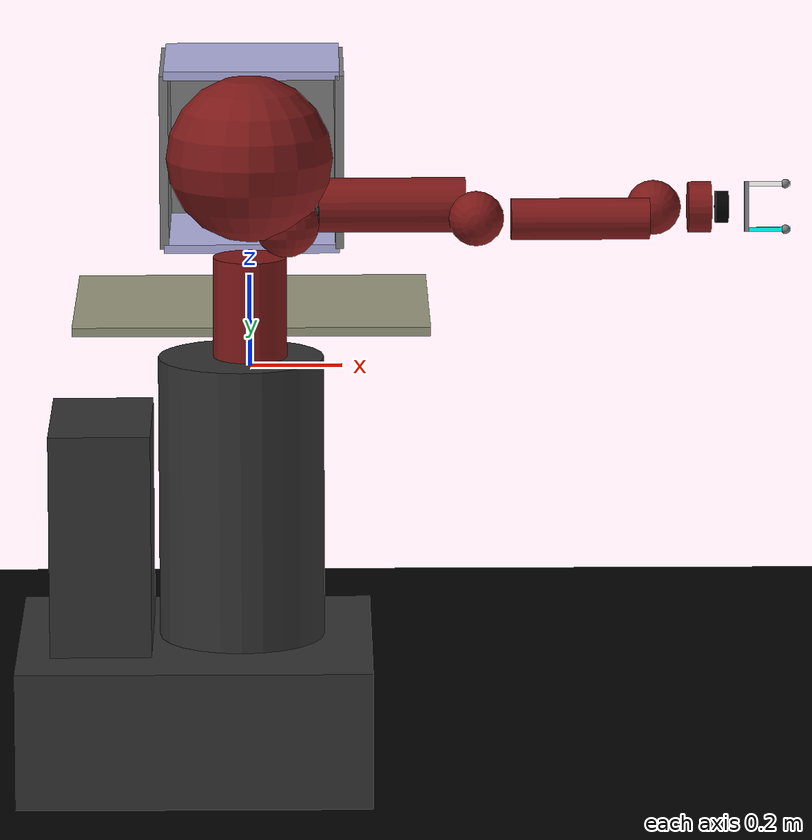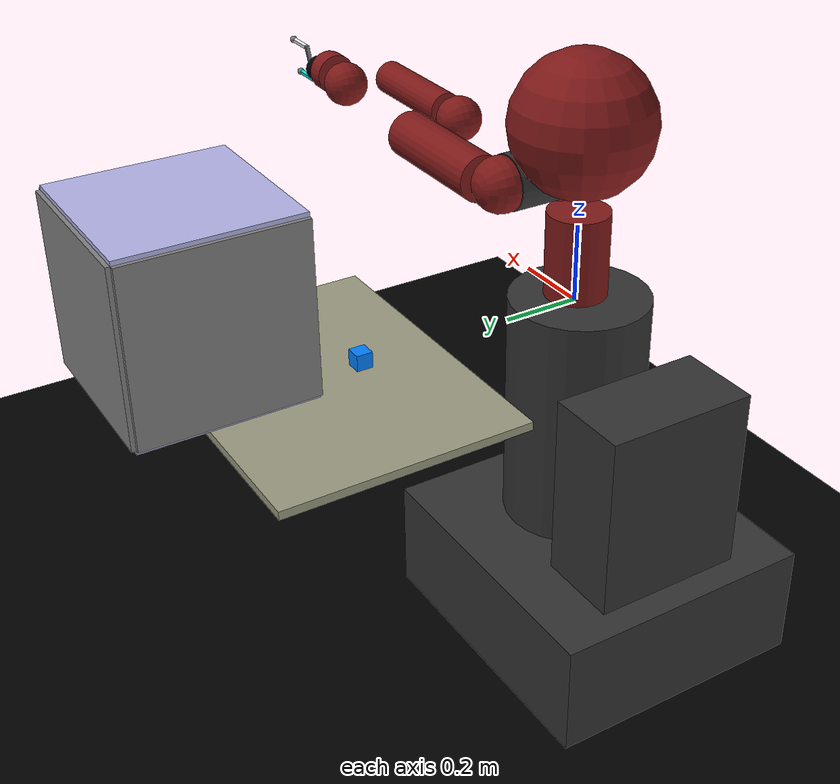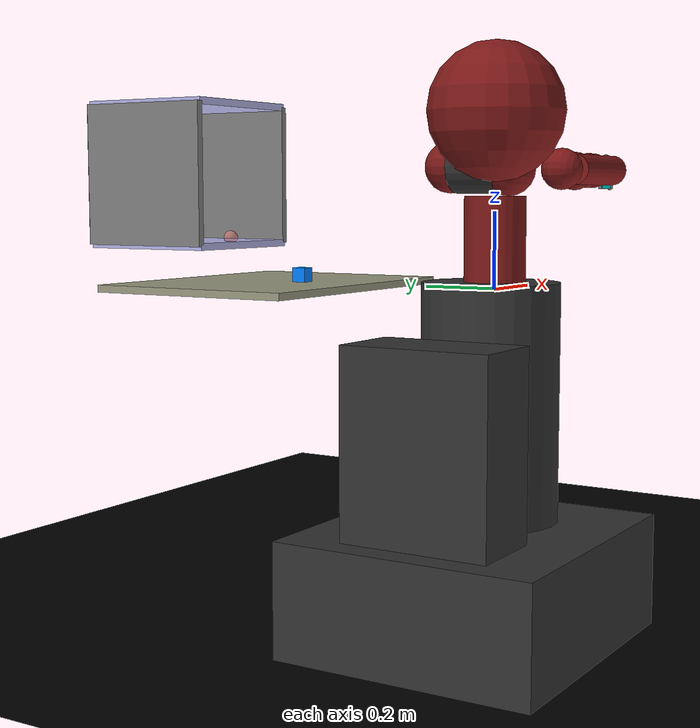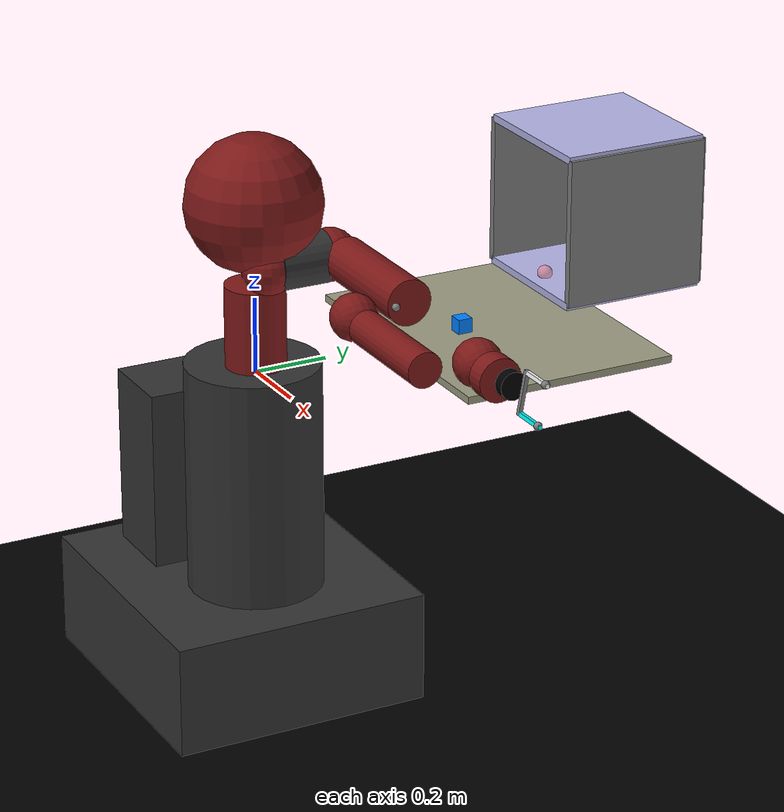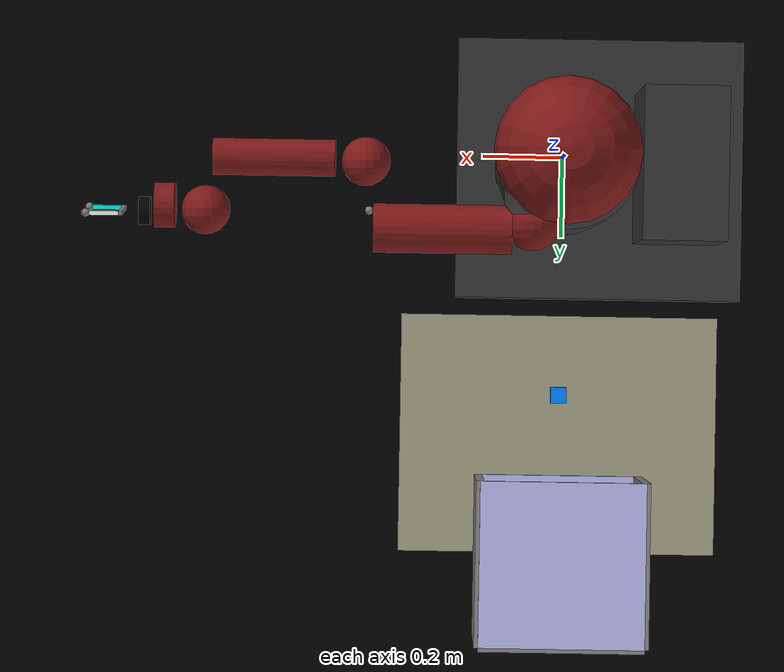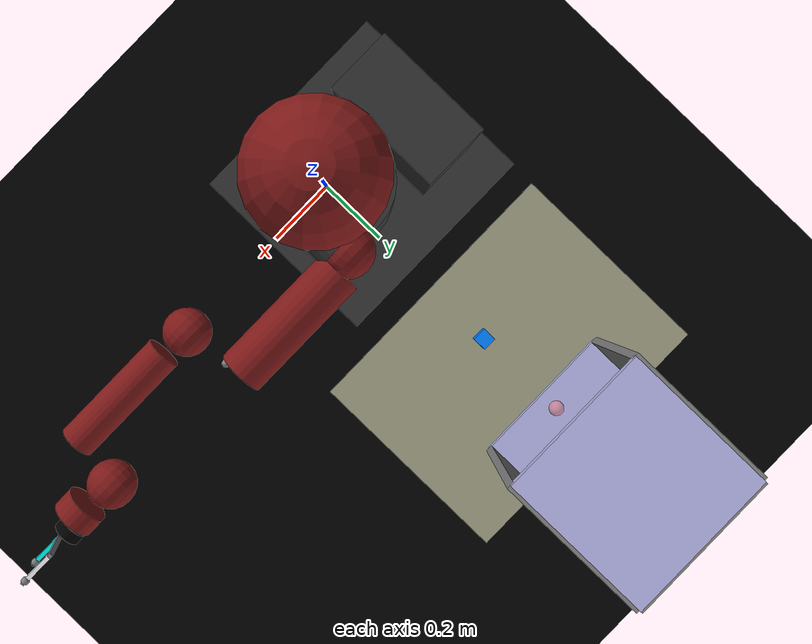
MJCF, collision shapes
<?xml version="1.0" encoding="utf-8"?>
<mujoco>
    <include file="shared_config.xml"></include>
    <worldbody>
        <include file="sawyer_xyz_base.xml"></include>

        <body name="obj" pos="0. 0.6 0.02">
            <joint name="objjoint" type="free" limited='false' damping="0" armature="0" />
            <inertial pos="0 0 0" mass=".1" diaginertia="100000 100000 100000"/>
            <geom name="objbox" type="box" pos="0 0 0"
                  size="0.02 0.02 0.02" rgba="0 0.5 1 1"
                  contype="7" conaffinity="7" friction="10.0 0.10 0.002" condim="4" mass="1"
            />
            <site name="obj" pos="0 0 0" size="0.01" />
        </body>

        <body name="cabinet" pos="0 1 0.1" euler='0 0 -1.57'>
            <geom type="box" pos="0 0 0" size="0.2 0.2 0.01" rgba=".7 .7 .9 1" contype="1" conaffinity="1"/>

            <geom type="box" pos="-0.2 0 0.2" size="0.01 0.2 0.2" contype="1" conaffinity="1"/>
            <geom type="box" pos="0 0.2 0.2" size="0.2 0.01 0.2"  contype="1" conaffinity="1"/>
            <geom type="box" pos="0 -0.2 0.2" size="0.2 0.01 0.2" contype="1" conaffinity="1"/>
            <geom type="box" pos="0 0 0.4" size="0.2 0.2 0.01" rgba=".7 .7 .9 1" contype="1" conaffinity="1"/>

        </body>

        <site name="goal" pos="0 0.85 0.12" size="0.02"
              rgba="1 0.5 0.5 0.5"/>

    </worldbody>
    <actuator>
        <position ctrllimited="true" ctrlrange="-1 1" joint="r_close" kp="100"  user="1"/>
        <position ctrllimited="true" ctrlrange="-1 1" joint="l_close" kp="100"  user="1"/>

    </actuator>
</mujoco>

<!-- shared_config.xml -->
<mujoco>
    <asset>
        <mesh name="pedestal" file="sawyer/pedestal.stl" />
        <mesh name="base" file="sawyer/base.stl" />
        <mesh name="l0" file="sawyer/l0.stl" />
        <mesh name="head" file="sawyer/head.stl" />
        <mesh name="l1" file="sawyer/l1.stl" />
        <mesh name="l2" file="sawyer/l2.stl" />
        <mesh name="l3" file="sawyer/l3.stl" />
        <mesh name="l4" file="sawyer/l4.stl" />
        <mesh name="l5" file="sawyer/l5.stl" />
        <mesh name="l6" file="sawyer/l6.stl" />

        <mesh name="WSG50_110" file="sawyer/WSG50_110.stl" />
    </asset>

    <visual>
        <headlight ambient="0.5 0.5 0.5"  />
    </visual>

    <compiler inertiafromgeom="auto" angle="radian" coordinate="local"  meshdir="../meshes" texturedir = "../textures"/>
    <size njmax="6000" nconmax="6000"/>
    <option
            gravity="0 0 -9.81"
            iterations="50"
            integrator="Euler"
            timestep="0.01"
            cone="elliptic"
            impratio="3"
            tolerance="1e-10"
            impedance='constant'
    />

    <default>
        <joint limited="true"
               damping="1"
               stiffness="0"
               armature=".1"
               user="0"/>
        <geom solref="0.02 1"
              solimp="1 1 0"

              />
        <motor ctrllimited="true" ctrlrange="-1 1"/>
        <position ctrllimited="true"/>

    </default>

    <equality>
        <weld body1="mocap" body2="hand" solref="0.02 1"></weld>
    </equality>
</mujoco>

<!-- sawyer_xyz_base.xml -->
<mujoco model="sawyer">
    <camera pos="0 0 3.2" name="topview" />

    <geom name="floor" type="plane" pos="0 0 -.9" size="10 10 0.5"
          rgba="0 0 0 1" contype="0" conaffinity="0" />
    <geom name="tableTop" type="box" pos="0 0.7 -0.01" size="0.4 0.3 0.01"
          rgba=".6 .6 .5 1" contype="1" conaffinity="1" />

    <body name="base" pos="0 0 0">
        <site name="basesite" pos="0 0 0" size="0.01" />
        <inertial pos="0 0 0" mass="0" diaginertia="0 0 0" />
        <body name="controller_box" pos="0 0 0">
            <inertial pos="-0.325 0 -0.38" mass="46.64" diaginertia="1.71363 1.27988 0.809981" />
            <geom size="0.11 0.2 0.265" pos="-0.325 0 -0.38" type="box" rgba="0.2 0.2 0.2 1"/>
        </body>
        <body name="pedestal_feet" pos="0 0 0">
            <inertial pos="-0.1225 0 -0.758" mass="167.09" diaginertia="8.16095 9.59375 15.0785" />
            <geom size="0.385 0.35 0.155" pos="-0.1225 0 -0.758" type="box" rgba="0.2 0.2 0.2 1"
                  contype="0"
                  conaffinity="0"
            />
        </body>
        <body name="torso" pos="0 0 0">
            <inertial pos="0 0 0" mass="0.0001" diaginertia="1e-08 1e-08 1e-08" />
            <geom size="0.05 0.05 0.05" type="box" contype="0" conaffinity="0" group="1" rgba="0.2 0.2 0.2 1" />
        </body>
        <body name="pedestal" pos="0 0 0">
            <inertial pos="0 0 0" quat="0.659267 -0.259505 -0.260945 0.655692" mass="60.864" diaginertia="6.0869 5.81635 4.20915" />
            <geom pos="0.26 0.345 -0.91488" quat="0.5 0.5 -0.5 -0.5" type="mesh" contype="0" conaffinity="0" group="1" rgba="0.2 0.2 0.2 1" mesh="pedestal" />
            <geom size="0.18 0.31" pos="-0.02 0 -0.29" type="cylinder" rgba="0.2 0.2 0.2 0" />
        </body>
        <body name="right_arm_base_link" pos="0 0 0">
            <inertial pos="-0.0006241 -2.8025e-05 0.065404" quat="-0.209285 0.674441 0.227335 0.670558" mass="2.0687" diaginertia="0.00740351 0.00681776 0.00672942" />
            <geom type="mesh" contype="0" conaffinity="0" group="1" rgba="0.5 0.1 0.1 1" mesh="base" />
            <geom size="0.08 0.12" pos="0 0 0.12" type="cylinder" rgba="0.5 0.1 0.1 0" />
            <body name="right_l0" pos="0 0 0.08">
                <inertial pos="0.024366 0.010969 0.14363" quat="0.894823 0.00899958 -0.170275 0.412573" mass="5.3213" diaginertia="0.0651588 0.0510944 0.0186218" />
                <joint name="right_j0" pos="0 0 0" axis="0 0 1" limited="true" range="-3.0503 3.0503" damping="10"/>
                <geom type="mesh" contype="0" conaffinity="0" group="1" rgba="0.5 0.1 0.1 1" mesh="l0" />
                <geom size="0.07" pos="0.08 0 0.23" rgba="0.5 0.1 0.1 0" />
                <body name="head" pos="0 0 0.2965">
                    <inertial pos="0.0053207 -2.6549e-05 0.1021" quat="0.999993 7.08405e-05 -0.00359857 -0.000626247" mass="1.5795" diaginertia="0.0118334 0.00827089 0.00496574" />
                    <geom type="mesh" contype="0" conaffinity="0" group="1" rgba="0.5 0.1 0.1 1" mesh="head" />
                    <geom size="0.18" pos="0 0 0.08" rgba="0.5 0.1 0.1 0" />
                    <body name="screen" pos="0.03 0 0.105" quat="0.5 0.5 0.5 0.5">
                        <inertial pos="0 0 0" mass="0.0001" diaginertia="1e-08 1e-08 1e-08" />
                        <geom size="0.12 0.07 0.001" type="box" contype="0" conaffinity="0" group="1" rgba="0.2 0.2 0.2 0" />
                        <geom size="0.001" rgba="0.2 0.2 0.2 0" />
                    </body>
                    <body name="head_camera" pos="0.0228027 0 0.216572" quat="0.342813 -0.618449 0.618449 -0.342813">
                        <inertial pos="0.0228027 0 0.216572" quat="0.342813 -0.618449 0.618449 -0.342813" mass="0" diaginertia="0 0 0" />
                        <site name="headsite" pos="0 0 0" size="0.01" />
                    </body>
                </body>
                <body name="right_torso_itb" pos="-0.055 0 0.22" quat="0.707107 0 -0.707107 0">
                    <inertial pos="0 0 0" mass="0.0001" diaginertia="1e-08 1e-08 1e-08" />
                </body>
                <body name="right_l1" pos="0.081 0.05 0.237" quat="0.5 -0.5 0.5 0.5">
                    <inertial pos="-0.0030849 -0.026811 0.092521" quat="0.424888 0.891987 0.132364 -0.0794296" mass="4.505" diaginertia="0.0224339 0.0221624 0.0097097" />
                    <joint name="right_j1" pos="0 0 0" axis="0 0 1"
                           limited="true" range="-3.8 -0.5"
                           damping="10"/>
                    <geom type="mesh" contype="0" conaffinity="0" group="1" rgba="0.5 0.1 0.1 1" mesh="l1" />
                    <geom size="0.07" pos="0 0 0.1225" rgba="0.5 0.1 0.1 0" />
                    <body name="right_l2" pos="0 -0.14 0.1425" quat="0.707107 0.707107 0 0">
                        <inertial pos="-0.00016044 -0.014967 0.13582" quat="0.707831 -0.0524761 0.0516007 0.702537" mass="1.745" diaginertia="0.0257928 0.025506 0.00292515" />
                        <joint name="right_j2" pos="0 0 0" axis="0 0 1" limited="true" range="-3.0426 3.0426" damping="10"/>
                        <geom type="mesh" contype="0" conaffinity="0" group="1" rgba="0.5 0.1 0.1 1" mesh="l2" />
                        <geom size="0.06 0.17" pos="0 0 0.08" type="cylinder" rgba="0.5 0.1 0.1 0" />
                        <body name="right_l3" pos="0 -0.042 0.26" quat="0.707107 -0.707107 0 0">
                            <site name="armsite" pos="0 0 0" size="0.01" />
                            <inertial pos="-0.0048135 -0.0281 -0.084154" quat="0.902999 0.385391 -0.0880901 0.168247" mass="2.5097" diaginertia="0.0102404 0.0096997 0.00369622" />
                            <joint name="right_j3" pos="0 0 0" axis="0 0 1" limited="true" range="-3.0439 3.0439" damping="10"/>
                            <geom type="mesh" contype="0" conaffinity="0" group="1" rgba="0.5 0.1 0.1 1" mesh="l3" />
                            <geom size="0.06" pos="0 -0.01 -0.12" rgba="0.5 0.1 0.1 0" />
                            <body name="right_l4" pos="0 -0.125 -0.1265" quat="0.707107 0.707107 0 0">
                                <inertial pos="-0.0018844 0.0069001 0.1341" quat="0.803612 0.031257 -0.0298334 0.593582" mass="1.1136" diaginertia="0.0136549 0.0135493 0.00127353" />
                                <joint name="right_j4" pos="0 0 0" axis="0 0 1" limited="true" range="-2.9761 2.9761" damping="10" />
                                <geom type="mesh" contype="0" conaffinity="0" group="1" rgba="0.5 0.1 0.1 1" mesh="l4" />
                                <geom size="0.045 0.15" pos="0 0 0.11" type="cylinder" rgba="0.5 0.1 0.1 0" />
                                <body name="right_arm_itb" pos="-0.055 0 0.075" quat="0.707107 0 -0.707107 0">
                                    <inertial pos="0 0 0" mass="0.0001" diaginertia="1e-08 1e-08 1e-08" />
                                </body>
                                <body name="right_l5" pos="0 0.031 0.275" quat="0.707107 -0.707107 0 0">
                                    <inertial pos="0.0061133 -0.023697 0.076416" quat="0.404076 0.9135 0.0473125 0.00158335" mass="1.5625" diaginertia="0.00474131 0.00422857 0.00190672" />
                                    <joint name="right_j5" pos="0 0 0" axis="0 0 1" limited="true" range="-2.9761 2.9761" damping="10"/>
                                    <geom type="mesh" contype="0" conaffinity="0" group="1" rgba="0.5 0.1 0.1 1" mesh="l5" />
                                    <geom size="0.06" pos="0 0 0.1" rgba="0.5 0.1 0.1 0" />
                                    <body name="right_hand_camera" pos="0.039552 -0.033 0.0695" quat="0.707107 0 0.707107 0">
                                        <inertial pos="0.039552 -0.033 0.0695" quat="0.707107 0 0.707107 0" mass="0" diaginertia="0 0 0" />
                                    </body>
                                    <body name="right_wrist" pos="0 0 0.10541" quat="0.707107 0.707107 0 0">
                                        <inertial pos="0 0 0.10541" quat="0.707107 0.707107 0 0" mass="0" diaginertia="0 0 0" />
                                    </body>
                                    <body name="right_l6" pos="0 -0.11 0.1053" quat="0.0616248 0.06163 -0.704416 0.704416">
                                        <inertial pos="-8.0726e-06 0.0085838 -0.0049566" quat="0.479044 0.515636 -0.513069 0.491322" mass="0.3292" diaginertia="0.000360258 0.000311068 0.000214974" />
                                        <joint name="right_j6" pos="0 0 0" axis="0 0 1" limited="true" range="-4.7124 4.7124" damping="10"/>
                                        <geom type="mesh" contype="0" conaffinity="0" group="1" rgba="0.5 0.1 0.1 1" mesh="l6" />
                                        <geom size="0.055 0.025" pos="0 0.015 -0.01" type="cylinder" rgba="0.5 0.1 0.1 0" />
                                        <body name="right_hand" pos="0 0 0.0245" quat="0.707107 0 0 0.707107">
                                            <inertial pos="1e-08 1e-08 1e-08" quat="0.820473 0.339851 -0.17592 0.424708" mass="1e-08" diaginertia="1e-08 1e-08 1e-08" />

                                            <geom type="mesh" contype="0" conaffinity="0" group="1" rgba="0.5 0.1 0.1 1" pos= "0 0 0.03" mesh="eGripperBase" />

                                            <geom size="0.035 0.014" pos="0 0 0.015" type="cylinder" rgba="0 0 0 1"/>

<!--  ================= BEGIN GRIPPER ================= /-->

                                            <body name="hand" pos="0 0 0.12" quat="-1 0 1 0">

                                                <geom name="rail" type="box" pos="-0.05 0 0" density="7850" size="0.005 0.055 0.005" friction="0.001 0.005 0.0001" rgba="0.5 0.5 0.5 1.0"/>

                                                <body name="rightclaw" pos="0 -0.05 0" >

                                                    <geom name="rightclaw_it" condim="4" margin="0.001" type="box" user="0" pos="0 0 0" size="0.045 0.005 0.005"  rgba="1 1 1 1.0"/>
                                                    <joint name="r_close" pos="0 0 0" axis="0 1 0" range= "0 0.03" armature="100" damping="1000" limited="true" solimplimit="0.99 0.999 0.01" solreflimit="0.01 1" type="slide"/>

                                                    <site name="rightEndEffector" pos="0.035 0 0" size="0.01" />

                                                    <!--geom name="rightclaw_it" class="1" type="box" density="7850" pos="0 0 0" size="0.045 0.005 0.005" friction="0.001 0.005 0.0001" rgba="1.0 1.0 1.0 1.0"/-->

                                                    <!-- joint name="r_close" type="slide" pos="0 0 0" axis="0 1 0" range= "0 0.03"    limited="true" damping="1"/-->
                                                </body>

                                                <body name="leftclaw" pos="0 0.05 0">

                                                    <geom name="leftclaw_it" condim="4" margin="0.001" type="box" user="0" pos="0 0 0" size="0.045 0.005 0.005"  rgba="0 1 1 1.0"/>
                                                    <joint name="l_close" pos="0 0 0" axis="0 1 0" range= "-0.03 0" armature="100" damping="1000" limited="true" solimplimit="0.99 0.999 0.01" solreflimit="0.01 1" type="slide"/>

                                                    <site name="leftEndEffector" pos="0.035 0 0" size="0.01" />

                                                </body>
                                            </body>

<!--  ================= END GRIPPER ================= /-->
                                        </body>

                                    </body>

                                </body>

                                <body name="right_l4_2" pos="0 0 0">
                                    <inertial pos="1e-08 1e-08 1e-08" quat="0.820473 0.339851 -0.17592 0.424708" mass="1e-08" diaginertia="1e-08 1e-08 1e-08" />
                                    <geom size="0.06" pos="0 0.01 0.26"
                                          rgba="0.2 0.2 0.2 0"
                                          contype="0"
                                          conaffinity="0"
                                    />
                                </body>
                            </body>
                        </body>
                        <body name="right_l2_2" pos="0 0 0">
                            <inertial pos="1e-08 1e-08 1e-08" quat="0.820473 0.339851 -0.17592 0.424708" mass="1e-08" diaginertia="1e-08 1e-08 1e-08" />
                            <geom size="0.06" pos="0 0 0.26" rgba="0.2 0.2 0.2 0"
                                  contype="0"
                                  conaffinity="0"
                            />
                        </body>
                    </body>
                    <body name="right_l1_2" pos="0 0 0">
                        <inertial pos="1e-08 1e-08 1e-08" quat="0.820473 0.339851 -0.17592 0.424708" mass="1e-08" diaginertia="1e-08 1e-08 1e-08" />
                        <geom size="0.07 0.07" pos="0 0 0.035" type="cylinder" rgba="0.2 0.2 0.2 0"/>
                    </body>
                </body>
            </body>
        </body>
    </body>

    <body mocap="true" name="mocap" pos="0 0 0">
        <!--For debugging, set the alpha to 1-->
        <site pos="0 0 0" name= "mocap" rgba="0.0 0.5 0.5 1" size="0.02" type="sphere"></site>
    </body>

</mujoco>
